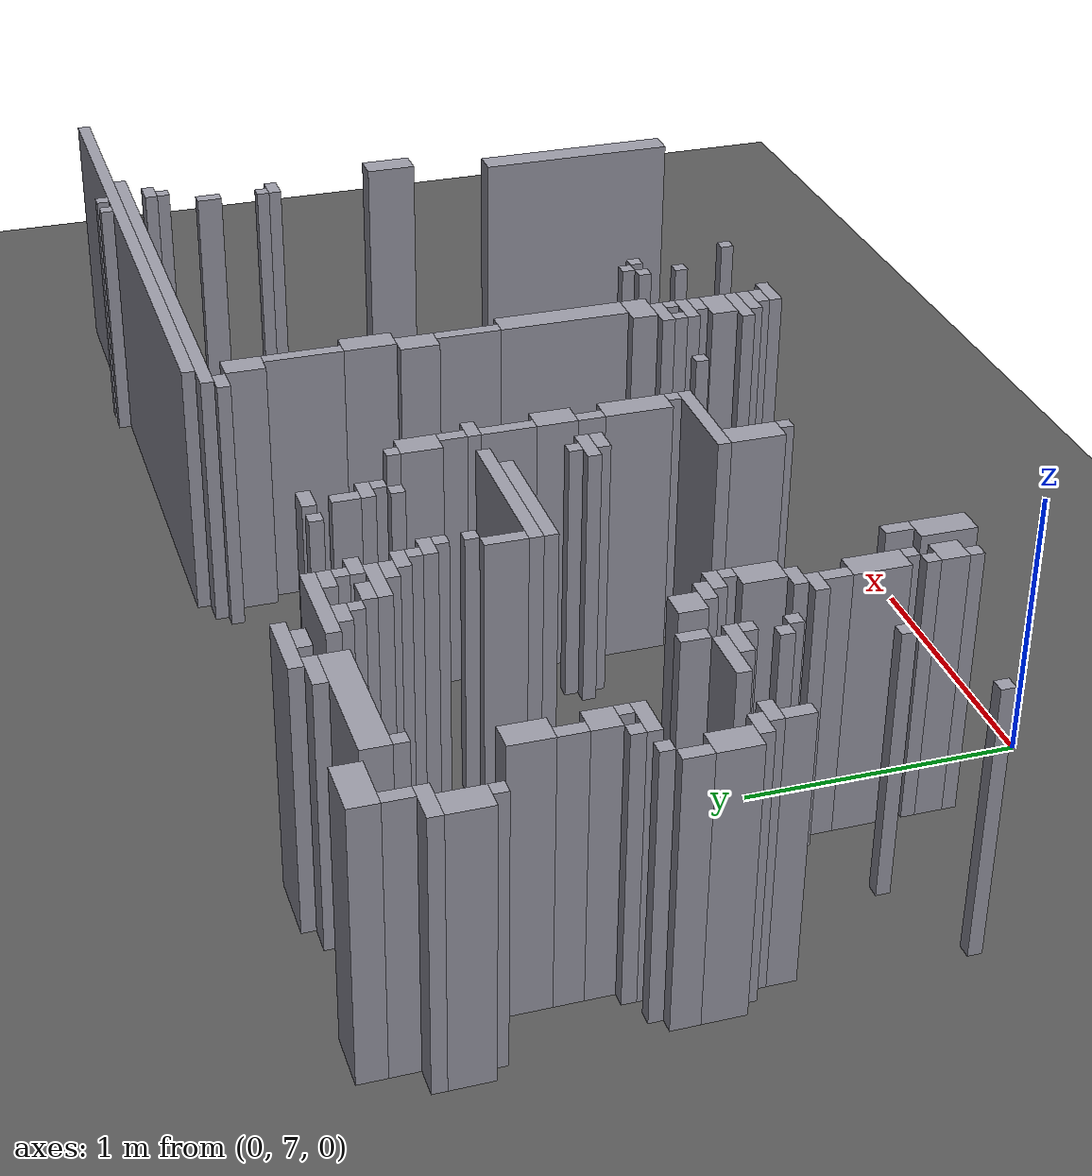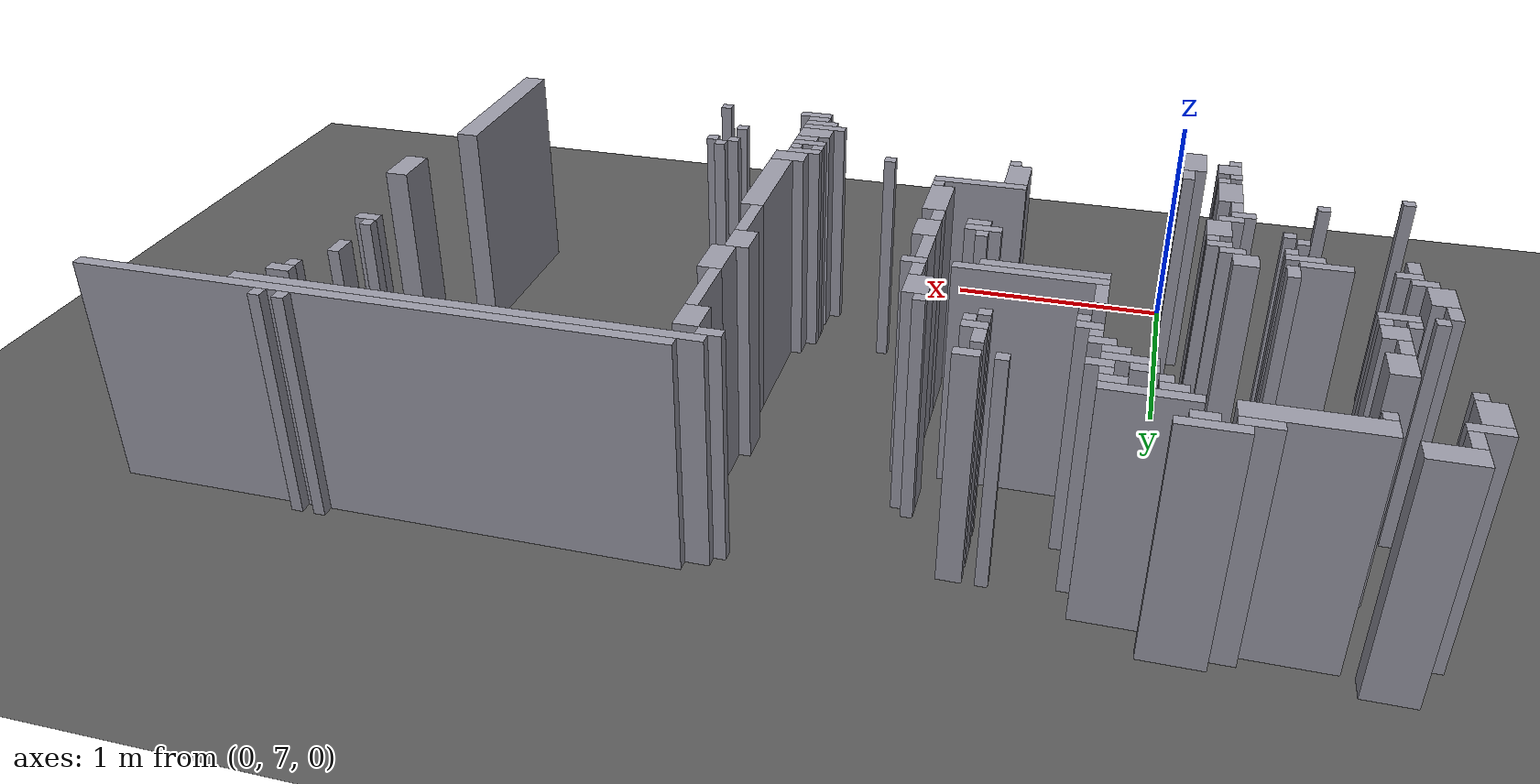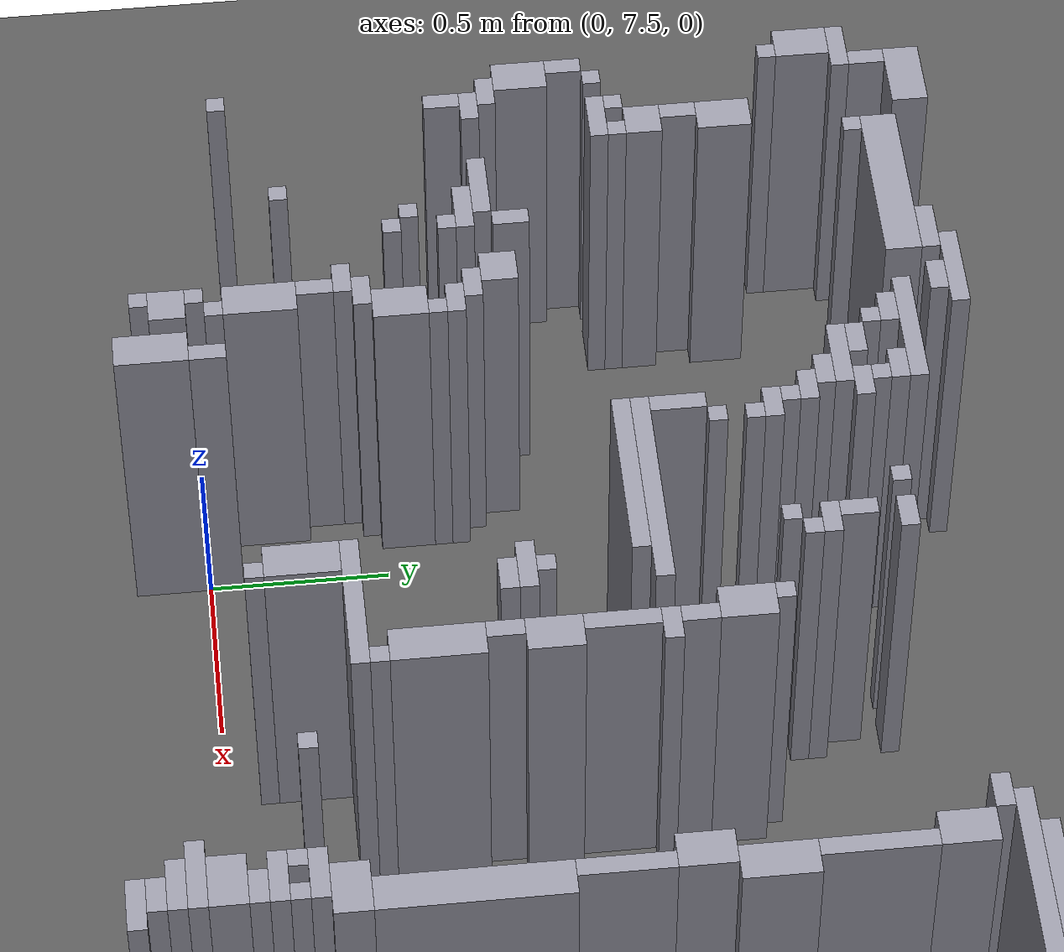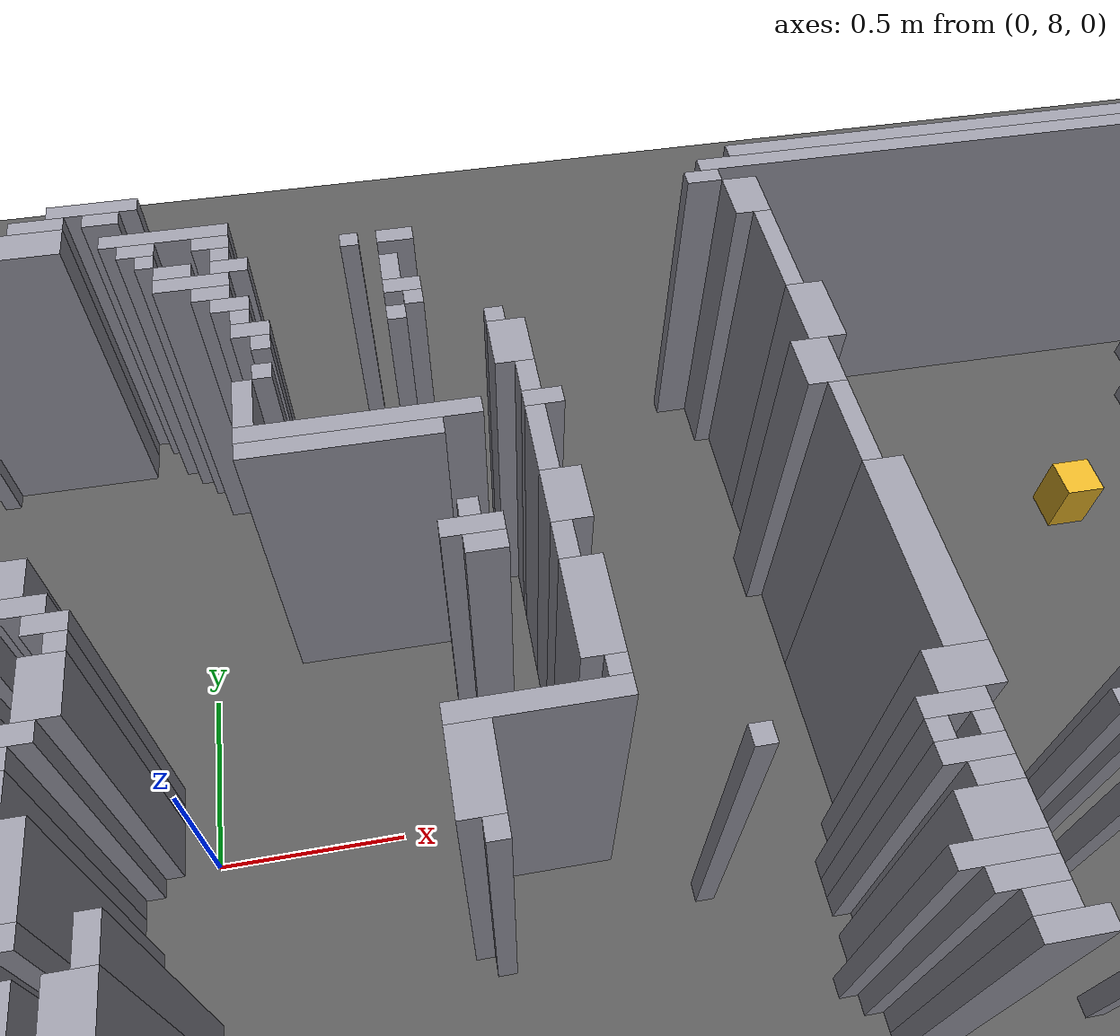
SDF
<sdf version="1.8">
 <world name="dimi">
  <model name="ground">
   <static>true</static>
   <link name="ground_link">
    <collision name="c"><geometry><plane><normal>0 0 1</normal><size>60 60</size></plane></geometry></collision>
    <visual name="v">
     <geometry><plane><normal>0 0 1</normal><size>60 60</size></plane></geometry>
     <material><ambient>0.3 0.3 0.3 1</ambient><diffuse>0.35 0.35 0.35 1</diffuse></material>
    </visual>
   </link>
  </model>
  <model name="walls">
   <static>true</static>
   <link name="wall_0">
    <pose>-0.8470 9.5420 0.5000 0 0 0</pose>
    <collision name="c"><geometry><box><size>0.2000 0.1000 1.0000</size></box></geometry></collision>
    <visual name="v">
     <geometry><box><size>0.2000 0.1000 1.0000</size></box></geometry>
     <material><ambient>0.5 0.5 0.55 1</ambient><diffuse>0.6 0.6 0.65 1</diffuse></material>
    </visual>
   </link>
   <link name="wall_1">
    <pose>-0.1220 9.5670 0.5000 0 0 0</pose>
    <collision name="c"><geometry><box><size>0.2500 0.0500 1.0000</size></box></geometry></collision>
    <visual name="v">
     <geometry><box><size>0.2500 0.0500 1.0000</size></box></geometry>
     <material><ambient>0.5 0.5 0.55 1</ambient><diffuse>0.6 0.6 0.65 1</diffuse></material>
    </visual>
   </link>
   <link name="wall_2">
    <pose>3.2280 9.5670 0.5000 0 0 0</pose>
    <collision name="c"><geometry><box><size>0.0500 0.0500 1.0000</size></box></geometry></collision>
    <visual name="v">
     <geometry><box><size>0.0500 0.0500 1.0000</size></box></geometry>
     <material><ambient>0.5 0.5 0.55 1</ambient><diffuse>0.6 0.6 0.65 1</diffuse></material>
    </visual>
   </link>
   <link name="wall_3">
    <pose>3.3280 9.5670 0.5000 0 0 0</pose>
    <collision name="c"><geometry><box><size>0.0500 0.0500 1.0000</size></box></geometry></collision>
    <visual name="v">
     <geometry><box><size>0.0500 0.0500 1.0000</size></box></geometry>
     <material><ambient>0.5 0.5 0.55 1</ambient><diffuse>0.6 0.6 0.65 1</diffuse></material>
    </visual>
   </link>
   <link name="wall_8">
    <pose>-0.2720 9.5170 0.5000 0 0 0</pose>
    <collision name="c"><geometry><box><size>0.1500 0.0500 1.0000</size></box></geometry></collision>
    <visual name="v">
     <geometry><box><size>0.1500 0.0500 1.0000</size></box></geometry>
     <material><ambient>0.5 0.5 0.55 1</ambient><diffuse>0.6 0.6 0.65 1</diffuse></material>
    </visual>
   </link>
   <link name="wall_9">
    <pose>-0.0970 9.5170 0.5000 0 0 0</pose>
    <collision name="c"><geometry><box><size>0.1000 0.0500 1.0000</size></box></geometry></collision>
    <visual name="v">
     <geometry><box><size>0.1000 0.0500 1.0000</size></box></geometry>
     <material><ambient>0.5 0.5 0.55 1</ambient><diffuse>0.6 0.6 0.65 1</diffuse></material>
    </visual>
   </link>
   <link name="wall_10">
    <pose>2.9280 9.5170 0.5000 0 0 0</pose>
    <collision name="c"><geometry><box><size>2.4500 0.0500 1.0000</size></box></geometry></collision>
    <visual name="v">
     <geometry><box><size>2.4500 0.0500 1.0000</size></box></geometry>
     <material><ambient>0.5 0.5 0.55 1</ambient><diffuse>0.6 0.6 0.65 1</diffuse></material>
    </visual>
   </link>
   <link name="wall_14">
    <pose>-0.9220 9.4420 0.5000 0 0 0</pose>
    <collision name="c"><geometry><box><size>0.0500 0.1000 1.0000</size></box></geometry></collision>
    <visual name="v">
     <geometry><box><size>0.0500 0.1000 1.0000</size></box></geometry>
     <material><ambient>0.5 0.5 0.55 1</ambient><diffuse>0.6 0.6 0.65 1</diffuse></material>
    </visual>
   </link>
   <link name="wall_15">
    <pose>-0.4470 9.4420 0.5000 0 0 0</pose>
    <collision name="c"><geometry><box><size>0.5000 0.1000 1.0000</size></box></geometry></collision>
    <visual name="v">
     <geometry><box><size>0.5000 0.1000 1.0000</size></box></geometry>
     <material><ambient>0.5 0.5 0.55 1</ambient><diffuse>0.6 0.6 0.65 1</diffuse></material>
    </visual>
   </link>
   <link name="wall_16">
    <pose>2.5530 9.4670 0.5000 0 0 0</pose>
    <collision name="c"><geometry><box><size>1.9000 0.0500 1.0000</size></box></geometry></collision>
    <visual name="v">
     <geometry><box><size>1.9000 0.0500 1.0000</size></box></geometry>
     <material><ambient>0.5 0.5 0.55 1</ambient><diffuse>0.6 0.6 0.65 1</diffuse></material>
    </visual>
   </link>
   <link name="wall_22">
    <pose>0.0780 9.4170 0.5000 0 0 0</pose>
    <collision name="c"><geometry><box><size>0.3500 0.0500 1.0000</size></box></geometry></collision>
    <visual name="v">
     <geometry><box><size>0.3500 0.0500 1.0000</size></box></geometry>
     <material><ambient>0.5 0.5 0.55 1</ambient><diffuse>0.6 0.6 0.65 1</diffuse></material>
    </visual>
   </link>
   <link name="wall_23">
    <pose>1.6030 9.4170 0.5000 0 0 0</pose>
    <collision name="c"><geometry><box><size>0.1000 0.0500 1.0000</size></box></geometry></collision>
    <visual name="v">
     <geometry><box><size>0.1000 0.0500 1.0000</size></box></geometry>
     <material><ambient>0.5 0.5 0.55 1</ambient><diffuse>0.6 0.6 0.65 1</diffuse></material>
    </visual>
   </link>
   <link name="wall_28">
    <pose>-0.9720 9.3670 0.5000 0 0 0</pose>
    <collision name="c"><geometry><box><size>0.1500 0.0500 1.0000</size></box></geometry></collision>
    <visual name="v">
     <geometry><box><size>0.1500 0.0500 1.0000</size></box></geometry>
     <material><ambient>0.5 0.5 0.55 1</ambient><diffuse>0.6 0.6 0.65 1</diffuse></material>
    </visual>
   </link>
   <link name="wall_29">
    <pose>-0.6720 9.3670 0.5000 0 0 0</pose>
    <collision name="c"><geometry><box><size>0.0500 0.0500 1.0000</size></box></geometry></collision>
    <visual name="v">
     <geometry><box><size>0.0500 0.0500 1.0000</size></box></geometry>
     <material><ambient>0.5 0.5 0.55 1</ambient><diffuse>0.6 0.6 0.65 1</diffuse></material>
    </visual>
   </link>
   <link name="wall_30">
    <pose>0.0030 9.3670 0.5000 0 0 0</pose>
    <collision name="c"><geometry><box><size>0.1000 0.0500 1.0000</size></box></geometry></collision>
    <visual name="v">
     <geometry><box><size>0.1000 0.0500 1.0000</size></box></geometry>
     <material><ambient>0.5 0.5 0.55 1</ambient><diffuse>0.6 0.6 0.65 1</diffuse></material>
    </visual>
   </link>
   <link name="wall_31">
    <pose>0.2030 9.3670 0.5000 0 0 0</pose>
    <collision name="c"><geometry><box><size>0.1000 0.0500 1.0000</size></box></geometry></collision>
    <visual name="v">
     <geometry><box><size>0.1000 0.0500 1.0000</size></box></geometry>
     <material><ambient>0.5 0.5 0.55 1</ambient><diffuse>0.6 0.6 0.65 1</diffuse></material>
    </visual>
   </link>
   <link name="wall_32">
    <pose>1.7030 9.3170 0.5000 0 0 0</pose>
    <collision name="c"><geometry><box><size>0.1000 0.1500 1.0000</size></box></geometry></collision>
    <visual name="v">
     <geometry><box><size>0.1000 0.1500 1.0000</size></box></geometry>
     <material><ambient>0.5 0.5 0.55 1</ambient><diffuse>0.6 0.6 0.65 1</diffuse></material>
    </visual>
   </link>
   <link name="wall_33">
    <pose>3.3530 9.3670 0.5000 0 0 0</pose>
    <collision name="c"><geometry><box><size>0.1000 0.0500 1.0000</size></box></geometry></collision>
    <visual name="v">
     <geometry><box><size>0.1000 0.0500 1.0000</size></box></geometry>
     <material><ambient>0.5 0.5 0.55 1</ambient><diffuse>0.6 0.6 0.65 1</diffuse></material>
    </visual>
   </link>
   <link name="wall_39">
    <pose>-0.9970 9.2670 0.5000 0 0 0</pose>
    <collision name="c"><geometry><box><size>0.1000 0.1500 1.0000</size></box></geometry></collision>
    <visual name="v">
     <geometry><box><size>0.1000 0.1500 1.0000</size></box></geometry>
     <material><ambient>0.5 0.5 0.55 1</ambient><diffuse>0.6 0.6 0.65 1</diffuse></material>
    </visual>
   </link>
   <link name="wall_40">
    <pose>0.0280 9.3170 0.5000 0 0 0</pose>
    <collision name="c"><geometry><box><size>0.0500 0.0500 1.0000</size></box></geometry></collision>
    <visual name="v">
     <geometry><box><size>0.0500 0.0500 1.0000</size></box></geometry>
     <material><ambient>0.5 0.5 0.55 1</ambient><diffuse>0.6 0.6 0.65 1</diffuse></material>
    </visual>
   </link>
   <link name="wall_41">
    <pose>0.2280 9.3170 0.5000 0 0 0</pose>
    <collision name="c"><geometry><box><size>0.0500 0.0500 1.0000</size></box></geometry></collision>
    <visual name="v">
     <geometry><box><size>0.0500 0.0500 1.0000</size></box></geometry>
     <material><ambient>0.5 0.5 0.55 1</ambient><diffuse>0.6 0.6 0.65 1</diffuse></material>
    </visual>
   </link>
   <link name="wall_42">
    <pose>0.5780 9.3170 0.5000 0 0 0</pose>
    <collision name="c"><geometry><box><size>0.0500 0.0500 1.0000</size></box></geometry></collision>
    <visual name="v">
     <geometry><box><size>0.0500 0.0500 1.0000</size></box></geometry>
     <material><ambient>0.5 0.5 0.55 1</ambient><diffuse>0.6 0.6 0.65 1</diffuse></material>
    </visual>
   </link>
   <link name="wall_43">
    <pose>0.7030 9.3170 0.5000 0 0 0</pose>
    <collision name="c"><geometry><box><size>0.1000 0.0500 1.0000</size></box></geometry></collision>
    <visual name="v">
     <geometry><box><size>0.1000 0.0500 1.0000</size></box></geometry>
     <material><ambient>0.5 0.5 0.55 1</ambient><diffuse>0.6 0.6 0.65 1</diffuse></material>
    </visual>
   </link>
   <link name="wall_44">
    <pose>3.3280 9.3170 0.5000 0 0 0</pose>
    <collision name="c"><geometry><box><size>0.0500 0.0500 1.0000</size></box></geometry></collision>
    <visual name="v">
     <geometry><box><size>0.0500 0.0500 1.0000</size></box></geometry>
     <material><ambient>0.5 0.5 0.55 1</ambient><diffuse>0.6 0.6 0.65 1</diffuse></material>
    </visual>
   </link>
   <link name="wall_48">
    <pose>0.1030 9.2670 0.5000 0 0 0</pose>
    <collision name="c"><geometry><box><size>0.1000 0.0500 1.0000</size></box></geometry></collision>
    <visual name="v">
     <geometry><box><size>0.1000 0.0500 1.0000</size></box></geometry>
     <material><ambient>0.5 0.5 0.55 1</ambient><diffuse>0.6 0.6 0.65 1</diffuse></material>
    </visual>
   </link>
   <link name="wall_49">
    <pose>0.2530 9.2670 0.5000 0 0 0</pose>
    <collision name="c"><geometry><box><size>0.1000 0.0500 1.0000</size></box></geometry></collision>
    <visual name="v">
     <geometry><box><size>0.1000 0.0500 1.0000</size></box></geometry>
     <material><ambient>0.5 0.5 0.55 1</ambient><diffuse>0.6 0.6 0.65 1</diffuse></material>
    </visual>
   </link>
   <link name="wall_51">
    <pose>0.1530 9.2170 0.5000 0 0 0</pose>
    <collision name="c"><geometry><box><size>0.2000 0.0500 1.0000</size></box></geometry></collision>
    <visual name="v">
     <geometry><box><size>0.2000 0.0500 1.0000</size></box></geometry>
     <material><ambient>0.5 0.5 0.55 1</ambient><diffuse>0.6 0.6 0.65 1</diffuse></material>
    </visual>
   </link>
   <link name="wall_52">
    <pose>0.6780 9.1920 0.5000 0 0 0</pose>
    <collision name="c"><geometry><box><size>0.0500 0.1000 1.0000</size></box></geometry></collision>
    <visual name="v">
     <geometry><box><size>0.0500 0.1000 1.0000</size></box></geometry>
     <material><ambient>0.5 0.5 0.55 1</ambient><diffuse>0.6 0.6 0.65 1</diffuse></material>
    </visual>
   </link>
   <link name="wall_53">
    <pose>1.7280 9.0920 0.5000 0 0 0</pose>
    <collision name="c"><geometry><box><size>0.0500 0.3000 1.0000</size></box></geometry></collision>
    <visual name="v">
     <geometry><box><size>0.0500 0.3000 1.0000</size></box></geometry>
     <material><ambient>0.5 0.5 0.55 1</ambient><diffuse>0.6 0.6 0.65 1</diffuse></material>
    </visual>
   </link>
   <link name="wall_54">
    <pose>-0.9720 9.1670 0.5000 0 0 0</pose>
    <collision name="c"><geometry><box><size>0.0500 0.0500 1.0000</size></box></geometry></collision>
    <visual name="v">
     <geometry><box><size>0.0500 0.0500 1.0000</size></box></geometry>
     <material><ambient>0.5 0.5 0.55 1</ambient><diffuse>0.6 0.6 0.65 1</diffuse></material>
    </visual>
   </link>
   <link name="wall_55">
    <pose>0.2030 9.1670 0.5000 0 0 0</pose>
    <collision name="c"><geometry><box><size>0.1000 0.0500 1.0000</size></box></geometry></collision>
    <visual name="v">
     <geometry><box><size>0.1000 0.0500 1.0000</size></box></geometry>
     <material><ambient>0.5 0.5 0.55 1</ambient><diffuse>0.6 0.6 0.65 1</diffuse></material>
    </visual>
   </link>
   <link name="wall_56">
    <pose>3.2280 9.1420 0.5000 0 0 0</pose>
    <collision name="c"><geometry><box><size>0.0500 0.1000 1.0000</size></box></geometry></collision>
    <visual name="v">
     <geometry><box><size>0.0500 0.1000 1.0000</size></box></geometry>
     <material><ambient>0.5 0.5 0.55 1</ambient><diffuse>0.6 0.6 0.65 1</diffuse></material>
    </visual>
   </link>
   <link name="wall_61">
    <pose>0.2530 9.1170 0.5000 0 0 0</pose>
    <collision name="c"><geometry><box><size>0.1000 0.0500 1.0000</size></box></geometry></collision>
    <visual name="v">
     <geometry><box><size>0.1000 0.0500 1.0000</size></box></geometry>
     <material><ambient>0.5 0.5 0.55 1</ambient><diffuse>0.6 0.6 0.65 1</diffuse></material>
    </visual>
   </link>
   <link name="wall_62">
    <pose>0.7030 9.1170 0.5000 0 0 0</pose>
    <collision name="c"><geometry><box><size>0.1000 0.0500 1.0000</size></box></geometry></collision>
    <visual name="v">
     <geometry><box><size>0.1000 0.0500 1.0000</size></box></geometry>
     <material><ambient>0.5 0.5 0.55 1</ambient><diffuse>0.6 0.6 0.65 1</diffuse></material>
    </visual>
   </link>
   <link name="wall_65">
    <pose>-0.7470 9.0170 0.5000 0 0 0</pose>
    <collision name="c"><geometry><box><size>0.1000 0.1500 1.0000</size></box></geometry></collision>
    <visual name="v">
     <geometry><box><size>0.1000 0.1500 1.0000</size></box></geometry>
     <material><ambient>0.5 0.5 0.55 1</ambient><diffuse>0.6 0.6 0.65 1</diffuse></material>
    </visual>
   </link>
   <link name="wall_66">
    <pose>0.2780 9.0670 0.5000 0 0 0</pose>
    <collision name="c"><geometry><box><size>0.0500 0.0500 1.0000</size></box></geometry></collision>
    <visual name="v">
     <geometry><box><size>0.0500 0.0500 1.0000</size></box></geometry>
     <material><ambient>0.5 0.5 0.55 1</ambient><diffuse>0.6 0.6 0.65 1</diffuse></material>
    </visual>
   </link>
   <link name="wall_67">
    <pose>0.7280 9.0670 0.5000 0 0 0</pose>
    <collision name="c"><geometry><box><size>0.0500 0.0500 1.0000</size></box></geometry></collision>
    <visual name="v">
     <geometry><box><size>0.0500 0.0500 1.0000</size></box></geometry>
     <material><ambient>0.5 0.5 0.55 1</ambient><diffuse>0.6 0.6 0.65 1</diffuse></material>
    </visual>
   </link>
   <link name="wall_72">
    <pose>0.3030 9.0170 0.5000 0 0 0</pose>
    <collision name="c"><geometry><box><size>0.1000 0.0500 1.0000</size></box></geometry></collision>
    <visual name="v">
     <geometry><box><size>0.1000 0.0500 1.0000</size></box></geometry>
     <material><ambient>0.5 0.5 0.55 1</ambient><diffuse>0.6 0.6 0.65 1</diffuse></material>
    </visual>
   </link>
   <link name="wall_73">
    <pose>0.6780 9.0170 0.5000 0 0 0</pose>
    <collision name="c"><geometry><box><size>0.0500 0.0500 1.0000</size></box></geometry></collision>
    <visual name="v">
     <geometry><box><size>0.0500 0.0500 1.0000</size></box></geometry>
     <material><ambient>0.5 0.5 0.55 1</ambient><diffuse>0.6 0.6 0.65 1</diffuse></material>
    </visual>
   </link>
   <link name="wall_76">
    <pose>0.3280 8.9670 0.5000 0 0 0</pose>
    <collision name="c"><geometry><box><size>0.0500 0.0500 1.0000</size></box></geometry></collision>
    <visual name="v">
     <geometry><box><size>0.0500 0.0500 1.0000</size></box></geometry>
     <material><ambient>0.5 0.5 0.55 1</ambient><diffuse>0.6 0.6 0.65 1</diffuse></material>
    </visual>
   </link>
   <link name="wall_77">
    <pose>0.9280 8.9670 0.5000 0 0 0</pose>
    <collision name="c"><geometry><box><size>0.0500 0.0500 1.0000</size></box></geometry></collision>
    <visual name="v">
     <geometry><box><size>0.0500 0.0500 1.0000</size></box></geometry>
     <material><ambient>0.5 0.5 0.55 1</ambient><diffuse>0.6 0.6 0.65 1</diffuse></material>
    </visual>
   </link>
   <link name="wall_80">
    <pose>-0.7720 8.8920 0.5000 0 0 0</pose>
    <collision name="c"><geometry><box><size>0.0500 0.1000 1.0000</size></box></geometry></collision>
    <visual name="v">
     <geometry><box><size>0.0500 0.1000 1.0000</size></box></geometry>
     <material><ambient>0.5 0.5 0.55 1</ambient><diffuse>0.6 0.6 0.65 1</diffuse></material>
    </visual>
   </link>
   <link name="wall_81">
    <pose>0.9530 8.8670 0.5000 0 0 0</pose>
    <collision name="c"><geometry><box><size>0.1000 0.1500 1.0000</size></box></geometry></collision>
    <visual name="v">
     <geometry><box><size>0.1000 0.1500 1.0000</size></box></geometry>
     <material><ambient>0.5 0.5 0.55 1</ambient><diffuse>0.6 0.6 0.65 1</diffuse></material>
    </visual>
   </link>
   <link name="wall_82">
    <pose>1.7530 8.8420 0.5000 0 0 0</pose>
    <collision name="c"><geometry><box><size>0.1000 0.2000 1.0000</size></box></geometry></collision>
    <visual name="v">
     <geometry><box><size>0.1000 0.2000 1.0000</size></box></geometry>
     <material><ambient>0.5 0.5 0.55 1</ambient><diffuse>0.6 0.6 0.65 1</diffuse></material>
    </visual>
   </link>
   <link name="wall_83">
    <pose>3.2280 8.9170 0.5000 0 0 0</pose>
    <collision name="c"><geometry><box><size>0.0500 0.0500 1.0000</size></box></geometry></collision>
    <visual name="v">
     <geometry><box><size>0.0500 0.0500 1.0000</size></box></geometry>
     <material><ambient>0.5 0.5 0.55 1</ambient><diffuse>0.6 0.6 0.65 1</diffuse></material>
    </visual>
   </link>
   <link name="wall_85">
    <pose>0.3280 8.8670 0.5000 0 0 0</pose>
    <collision name="c"><geometry><box><size>0.0500 0.0500 1.0000</size></box></geometry></collision>
    <visual name="v">
     <geometry><box><size>0.0500 0.0500 1.0000</size></box></geometry>
     <material><ambient>0.5 0.5 0.55 1</ambient><diffuse>0.6 0.6 0.65 1</diffuse></material>
    </visual>
   </link>
   <link name="wall_86">
    <pose>3.2530 8.8670 0.5000 0 0 0</pose>
    <collision name="c"><geometry><box><size>0.1000 0.0500 1.0000</size></box></geometry></collision>
    <visual name="v">
     <geometry><box><size>0.1000 0.0500 1.0000</size></box></geometry>
     <material><ambient>0.5 0.5 0.55 1</ambient><diffuse>0.6 0.6 0.65 1</diffuse></material>
    </visual>
   </link>
   <link name="wall_89">
    <pose>-0.7470 8.7920 0.5000 0 0 0</pose>
    <collision name="c"><geometry><box><size>0.1000 0.1000 1.0000</size></box></geometry></collision>
    <visual name="v">
     <geometry><box><size>0.1000 0.1000 1.0000</size></box></geometry>
     <material><ambient>0.5 0.5 0.55 1</ambient><diffuse>0.6 0.6 0.65 1</diffuse></material>
    </visual>
   </link>
   <link name="wall_90">
    <pose>0.2780 8.7670 0.5000 0 0 0</pose>
    <collision name="c"><geometry><box><size>0.0500 0.1500 1.0000</size></box></geometry></collision>
    <visual name="v">
     <geometry><box><size>0.0500 0.1500 1.0000</size></box></geometry>
     <material><ambient>0.5 0.5 0.55 1</ambient><diffuse>0.6 0.6 0.65 1</diffuse></material>
    </visual>
   </link>
   <link name="wall_94">
    <pose>0.9780 8.7420 0.5000 0 0 0</pose>
    <collision name="c"><geometry><box><size>0.0500 0.1000 1.0000</size></box></geometry></collision>
    <visual name="v">
     <geometry><box><size>0.0500 0.1000 1.0000</size></box></geometry>
     <material><ambient>0.5 0.5 0.55 1</ambient><diffuse>0.6 0.6 0.65 1</diffuse></material>
    </visual>
   </link>
   <link name="wall_97">
    <pose>-0.8220 8.7170 0.5000 0 0 0</pose>
    <collision name="c"><geometry><box><size>0.0500 0.0500 1.0000</size></box></geometry></collision>
    <visual name="v">
     <geometry><box><size>0.0500 0.0500 1.0000</size></box></geometry>
     <material><ambient>0.5 0.5 0.55 1</ambient><diffuse>0.6 0.6 0.65 1</diffuse></material>
    </visual>
   </link>
   <link name="wall_98">
    <pose>-0.7220 8.7170 0.5000 0 0 0</pose>
    <collision name="c"><geometry><box><size>0.0500 0.0500 1.0000</size></box></geometry></collision>
    <visual name="v">
     <geometry><box><size>0.0500 0.0500 1.0000</size></box></geometry>
     <material><ambient>0.5 0.5 0.55 1</ambient><diffuse>0.6 0.6 0.65 1</diffuse></material>
    </visual>
   </link>
   <link name="wall_99">
    <pose>1.7030 8.6670 0.5000 0 0 0</pose>
    <collision name="c"><geometry><box><size>0.1000 0.1500 1.0000</size></box></geometry></collision>
    <visual name="v">
     <geometry><box><size>0.1000 0.1500 1.0000</size></box></geometry>
     <material><ambient>0.5 0.5 0.55 1</ambient><diffuse>0.6 0.6 0.65 1</diffuse></material>
    </visual>
   </link>
   <link name="wall_101">
    <pose>-0.9220 8.6670 0.5000 0 0 0</pose>
    <collision name="c"><geometry><box><size>0.0500 0.0500 1.0000</size></box></geometry></collision>
    <visual name="v">
     <geometry><box><size>0.0500 0.0500 1.0000</size></box></geometry>
     <material><ambient>0.5 0.5 0.55 1</ambient><diffuse>0.6 0.6 0.65 1</diffuse></material>
    </visual>
   </link>
   <link name="wall_102">
    <pose>-0.7720 8.6670 0.5000 0 0 0</pose>
    <collision name="c"><geometry><box><size>0.1500 0.0500 1.0000</size></box></geometry></collision>
    <visual name="v">
     <geometry><box><size>0.1500 0.0500 1.0000</size></box></geometry>
     <material><ambient>0.5 0.5 0.55 1</ambient><diffuse>0.6 0.6 0.65 1</diffuse></material>
    </visual>
   </link>
   <link name="wall_103">
    <pose>0.5530 8.6670 0.5000 0 0 0</pose>
    <collision name="c"><geometry><box><size>0.6000 0.0500 1.0000</size></box></geometry></collision>
    <visual name="v">
     <geometry><box><size>0.6000 0.0500 1.0000</size></box></geometry>
     <material><ambient>0.5 0.5 0.55 1</ambient><diffuse>0.6 0.6 0.65 1</diffuse></material>
    </visual>
   </link>
   <link name="wall_104">
    <pose>1.0030 8.6670 0.5000 0 0 0</pose>
    <collision name="c"><geometry><box><size>0.1000 0.0500 1.0000</size></box></geometry></collision>
    <visual name="v">
     <geometry><box><size>0.1000 0.0500 1.0000</size></box></geometry>
     <material><ambient>0.5 0.5 0.55 1</ambient><diffuse>0.6 0.6 0.65 1</diffuse></material>
    </visual>
   </link>
   <link name="wall_105">
    <pose>-0.9720 8.5920 0.5000 0 0 0</pose>
    <collision name="c"><geometry><box><size>0.0500 0.1000 1.0000</size></box></geometry></collision>
    <visual name="v">
     <geometry><box><size>0.0500 0.1000 1.0000</size></box></geometry>
     <material><ambient>0.5 0.5 0.55 1</ambient><diffuse>0.6 0.6 0.65 1</diffuse></material>
    </visual>
   </link>
   <link name="wall_106">
    <pose>0.5030 8.6170 0.5000 0 0 0</pose>
    <collision name="c"><geometry><box><size>0.5000 0.0500 1.0000</size></box></geometry></collision>
    <visual name="v">
     <geometry><box><size>0.5000 0.0500 1.0000</size></box></geometry>
     <material><ambient>0.5 0.5 0.55 1</ambient><diffuse>0.6 0.6 0.65 1</diffuse></material>
    </visual>
   </link>
   <link name="wall_107">
    <pose>0.9780 8.5420 0.5000 0 0 0</pose>
    <collision name="c"><geometry><box><size>0.0500 0.2000 1.0000</size></box></geometry></collision>
    <visual name="v">
     <geometry><box><size>0.0500 0.2000 1.0000</size></box></geometry>
     <material><ambient>0.5 0.5 0.55 1</ambient><diffuse>0.6 0.6 0.65 1</diffuse></material>
    </visual>
   </link>
   <link name="wall_109">
    <pose>1.7280 8.4670 0.5000 0 0 0</pose>
    <collision name="c"><geometry><box><size>0.0500 0.2500 1.0000</size></box></geometry></collision>
    <visual name="v">
     <geometry><box><size>0.0500 0.2500 1.0000</size></box></geometry>
     <material><ambient>0.5 0.5 0.55 1</ambient><diffuse>0.6 0.6 0.65 1</diffuse></material>
    </visual>
   </link>
   <link name="wall_112">
    <pose>-0.9470 8.4670 0.5000 0 0 0</pose>
    <collision name="c"><geometry><box><size>0.1000 0.1500 1.0000</size></box></geometry></collision>
    <visual name="v">
     <geometry><box><size>0.1000 0.1500 1.0000</size></box></geometry>
     <material><ambient>0.5 0.5 0.55 1</ambient><diffuse>0.6 0.6 0.65 1</diffuse></material>
    </visual>
   </link>
   <link name="wall_120">
    <pose>-0.4220 8.3920 0.5000 0 0 0</pose>
    <collision name="c"><geometry><box><size>0.0500 0.1000 1.0000</size></box></geometry></collision>
    <visual name="v">
     <geometry><box><size>0.0500 0.1000 1.0000</size></box></geometry>
     <material><ambient>0.5 0.5 0.55 1</ambient><diffuse>0.6 0.6 0.65 1</diffuse></material>
    </visual>
   </link>
   <link name="wall_121">
    <pose>1.0030 8.3670 0.5000 0 0 0</pose>
    <collision name="c"><geometry><box><size>0.1000 0.1500 1.0000</size></box></geometry></collision>
    <visual name="v">
     <geometry><box><size>0.1000 0.1500 1.0000</size></box></geometry>
     <material><ambient>0.5 0.5 0.55 1</ambient><diffuse>0.6 0.6 0.65 1</diffuse></material>
    </visual>
   </link>
   <link name="wall_122">
    <pose>3.3530 8.3420 0.5000 0 0 0</pose>
    <collision name="c"><geometry><box><size>0.1000 0.2000 1.0000</size></box></geometry></collision>
    <visual name="v">
     <geometry><box><size>0.1000 0.2000 1.0000</size></box></geometry>
     <material><ambient>0.5 0.5 0.55 1</ambient><diffuse>0.6 0.6 0.65 1</diffuse></material>
    </visual>
   </link>
   <link name="wall_126">
    <pose>-0.8970 8.3670 0.5000 0 0 0</pose>
    <collision name="c"><geometry><box><size>0.1000 0.0500 1.0000</size></box></geometry></collision>
    <visual name="v">
     <geometry><box><size>0.1000 0.0500 1.0000</size></box></geometry>
     <material><ambient>0.5 0.5 0.55 1</ambient><diffuse>0.6 0.6 0.65 1</diffuse></material>
    </visual>
   </link>
   <link name="wall_127">
    <pose>-0.2470 8.3420 0.5000 0 0 0</pose>
    <collision name="c"><geometry><box><size>0.1000 0.1000 1.0000</size></box></geometry></collision>
    <visual name="v">
     <geometry><box><size>0.1000 0.1000 1.0000</size></box></geometry>
     <material><ambient>0.5 0.5 0.55 1</ambient><diffuse>0.6 0.6 0.65 1</diffuse></material>
    </visual>
   </link>
   <link name="wall_128">
    <pose>0.7780 8.3670 0.5000 0 0 0</pose>
    <collision name="c"><geometry><box><size>0.0500 0.0500 1.0000</size></box></geometry></collision>
    <visual name="v">
     <geometry><box><size>0.0500 0.0500 1.0000</size></box></geometry>
     <material><ambient>0.5 0.5 0.55 1</ambient><diffuse>0.6 0.6 0.65 1</diffuse></material>
    </visual>
   </link>
   <link name="wall_132">
    <pose>-0.8470 8.3170 0.5000 0 0 0</pose>
    <collision name="c"><geometry><box><size>0.1000 0.0500 1.0000</size></box></geometry></collision>
    <visual name="v">
     <geometry><box><size>0.1000 0.0500 1.0000</size></box></geometry>
     <material><ambient>0.5 0.5 0.55 1</ambient><diffuse>0.6 0.6 0.65 1</diffuse></material>
    </visual>
   </link>
   <link name="wall_133">
    <pose>-0.5470 8.3170 0.5000 0 0 0</pose>
    <collision name="c"><geometry><box><size>0.2000 0.0500 1.0000</size></box></geometry></collision>
    <visual name="v">
     <geometry><box><size>0.2000 0.0500 1.0000</size></box></geometry>
     <material><ambient>0.5 0.5 0.55 1</ambient><diffuse>0.6 0.6 0.65 1</diffuse></material>
    </visual>
   </link>
   <link name="wall_134">
    <pose>0.7780 8.3170 0.5000 0 0 0</pose>
    <collision name="c"><geometry><box><size>0.1500 0.0500 1.0000</size></box></geometry></collision>
    <visual name="v">
     <geometry><box><size>0.1500 0.0500 1.0000</size></box></geometry>
     <material><ambient>0.5 0.5 0.55 1</ambient><diffuse>0.6 0.6 0.65 1</diffuse></material>
    </visual>
   </link>
   <link name="wall_135">
    <pose>1.7530 8.0920 0.5000 0 0 0</pose>
    <collision name="c"><geometry><box><size>0.1000 0.5000 1.0000</size></box></geometry></collision>
    <visual name="v">
     <geometry><box><size>0.1000 0.5000 1.0000</size></box></geometry>
     <material><ambient>0.5 0.5 0.55 1</ambient><diffuse>0.6 0.6 0.65 1</diffuse></material>
    </visual>
   </link>
   <link name="wall_136">
    <pose>-0.8720 8.2420 0.5000 0 0 0</pose>
    <collision name="c"><geometry><box><size>0.0500 0.1000 1.0000</size></box></geometry></collision>
    <visual name="v">
     <geometry><box><size>0.0500 0.1000 1.0000</size></box></geometry>
     <material><ambient>0.5 0.5 0.55 1</ambient><diffuse>0.6 0.6 0.65 1</diffuse></material>
    </visual>
   </link>
   <link name="wall_137">
    <pose>-0.4720 8.2670 0.5000 0 0 0</pose>
    <collision name="c"><geometry><box><size>0.1500 0.0500 1.0000</size></box></geometry></collision>
    <visual name="v">
     <geometry><box><size>0.1500 0.0500 1.0000</size></box></geometry>
     <material><ambient>0.5 0.5 0.55 1</ambient><diffuse>0.6 0.6 0.65 1</diffuse></material>
    </visual>
   </link>
   <link name="wall_138">
    <pose>-0.1970 8.2670 0.5000 0 0 0</pose>
    <collision name="c"><geometry><box><size>0.1000 0.0500 1.0000</size></box></geometry></collision>
    <visual name="v">
     <geometry><box><size>0.1000 0.0500 1.0000</size></box></geometry>
     <material><ambient>0.5 0.5 0.55 1</ambient><diffuse>0.6 0.6 0.65 1</diffuse></material>
    </visual>
   </link>
   <link name="wall_139">
    <pose>0.8030 8.2670 0.5000 0 0 0</pose>
    <collision name="c"><geometry><box><size>0.1000 0.0500 1.0000</size></box></geometry></collision>
    <visual name="v">
     <geometry><box><size>0.1000 0.0500 1.0000</size></box></geometry>
     <material><ambient>0.5 0.5 0.55 1</ambient><diffuse>0.6 0.6 0.65 1</diffuse></material>
    </visual>
   </link>
   <link name="wall_140">
    <pose>0.9780 8.2420 0.5000 0 0 0</pose>
    <collision name="c"><geometry><box><size>0.0500 0.1000 1.0000</size></box></geometry></collision>
    <visual name="v">
     <geometry><box><size>0.0500 0.1000 1.0000</size></box></geometry>
     <material><ambient>0.5 0.5 0.55 1</ambient><diffuse>0.6 0.6 0.65 1</diffuse></material>
    </visual>
   </link>
   <link name="wall_141">
    <pose>-0.4220 8.2170 0.5000 0 0 0</pose>
    <collision name="c"><geometry><box><size>0.0500 0.0500 1.0000</size></box></geometry></collision>
    <visual name="v">
     <geometry><box><size>0.0500 0.0500 1.0000</size></box></geometry>
     <material><ambient>0.5 0.5 0.55 1</ambient><diffuse>0.6 0.6 0.65 1</diffuse></material>
    </visual>
   </link>
   <link name="wall_142">
    <pose>-0.1470 8.2170 0.5000 0 0 0</pose>
    <collision name="c"><geometry><box><size>0.1000 0.0500 1.0000</size></box></geometry></collision>
    <visual name="v">
     <geometry><box><size>0.1000 0.0500 1.0000</size></box></geometry>
     <material><ambient>0.5 0.5 0.55 1</ambient><diffuse>0.6 0.6 0.65 1</diffuse></material>
    </visual>
   </link>
   <link name="wall_145">
    <pose>-0.1220 8.1670 0.5000 0 0 0</pose>
    <collision name="c"><geometry><box><size>0.0500 0.0500 1.0000</size></box></geometry></collision>
    <visual name="v">
     <geometry><box><size>0.0500 0.0500 1.0000</size></box></geometry>
     <material><ambient>0.5 0.5 0.55 1</ambient><diffuse>0.6 0.6 0.65 1</diffuse></material>
    </visual>
   </link>
   <link name="wall_146">
    <pose>1.0030 8.0670 0.5000 0 0 0</pose>
    <collision name="c"><geometry><box><size>0.1000 0.2500 1.0000</size></box></geometry></collision>
    <visual name="v">
     <geometry><box><size>0.1000 0.2500 1.0000</size></box></geometry>
     <material><ambient>0.5 0.5 0.55 1</ambient><diffuse>0.6 0.6 0.65 1</diffuse></material>
    </visual>
   </link>
   <link name="wall_151">
    <pose>-0.4720 8.1170 0.5000 0 0 0</pose>
    <collision name="c"><geometry><box><size>0.0500 0.0500 1.0000</size></box></geometry></collision>
    <visual name="v">
     <geometry><box><size>0.0500 0.0500 1.0000</size></box></geometry>
     <material><ambient>0.5 0.5 0.55 1</ambient><diffuse>0.6 0.6 0.65 1</diffuse></material>
    </visual>
   </link>
   <link name="wall_152">
    <pose>-0.1470 8.0670 0.5000 0 0 0</pose>
    <collision name="c"><geometry><box><size>0.1000 0.1500 1.0000</size></box></geometry></collision>
    <visual name="v">
     <geometry><box><size>0.1000 0.1500 1.0000</size></box></geometry>
     <material><ambient>0.5 0.5 0.55 1</ambient><diffuse>0.6 0.6 0.65 1</diffuse></material>
    </visual>
   </link>
   <link name="wall_156">
    <pose>-0.4220 8.0670 0.5000 0 0 0</pose>
    <collision name="c"><geometry><box><size>0.0500 0.0500 1.0000</size></box></geometry></collision>
    <visual name="v">
     <geometry><box><size>0.0500 0.0500 1.0000</size></box></geometry>
     <material><ambient>0.5 0.5 0.55 1</ambient><diffuse>0.6 0.6 0.65 1</diffuse></material>
    </visual>
   </link>
   <link name="wall_163">
    <pose>-0.1970 7.9670 0.5000 0 0 0</pose>
    <collision name="c"><geometry><box><size>0.1000 0.0500 1.0000</size></box></geometry></collision>
    <visual name="v">
     <geometry><box><size>0.1000 0.0500 1.0000</size></box></geometry>
     <material><ambient>0.5 0.5 0.55 1</ambient><diffuse>0.6 0.6 0.65 1</diffuse></material>
    </visual>
   </link>
   <link name="wall_169">
    <pose>-0.2470 7.9170 0.5000 0 0 0</pose>
    <collision name="c"><geometry><box><size>0.1000 0.0500 1.0000</size></box></geometry></collision>
    <visual name="v">
     <geometry><box><size>0.1000 0.0500 1.0000</size></box></geometry>
     <material><ambient>0.5 0.5 0.55 1</ambient><diffuse>0.6 0.6 0.65 1</diffuse></material>
    </visual>
   </link>
   <link name="wall_170">
    <pose>1.0280 7.9170 0.5000 0 0 0</pose>
    <collision name="c"><geometry><box><size>0.0500 0.0500 1.0000</size></box></geometry></collision>
    <visual name="v">
     <geometry><box><size>0.0500 0.0500 1.0000</size></box></geometry>
     <material><ambient>0.5 0.5 0.55 1</ambient><diffuse>0.6 0.6 0.65 1</diffuse></material>
    </visual>
   </link>
   <link name="wall_171">
    <pose>3.2530 7.5420 0.5000 0 0 0</pose>
    <collision name="c"><geometry><box><size>0.1000 0.8000 1.0000</size></box></geometry></collision>
    <visual name="v">
     <geometry><box><size>0.1000 0.8000 1.0000</size></box></geometry>
     <material><ambient>0.5 0.5 0.55 1</ambient><diffuse>0.6 0.6 0.65 1</diffuse></material>
    </visual>
   </link>
   <link name="wall_177">
    <pose>-0.2220 7.8420 0.5000 0 0 0</pose>
    <collision name="c"><geometry><box><size>0.0500 0.1000 1.0000</size></box></geometry></collision>
    <visual name="v">
     <geometry><box><size>0.0500 0.1000 1.0000</size></box></geometry>
     <material><ambient>0.5 0.5 0.55 1</ambient><diffuse>0.6 0.6 0.65 1</diffuse></material>
    </visual>
   </link>
   <link name="wall_178">
    <pose>0.8530 7.8670 0.5000 0 0 0</pose>
    <collision name="c"><geometry><box><size>0.4000 0.0500 1.0000</size></box></geometry></collision>
    <visual name="v">
     <geometry><box><size>0.4000 0.0500 1.0000</size></box></geometry>
     <material><ambient>0.5 0.5 0.55 1</ambient><diffuse>0.6 0.6 0.65 1</diffuse></material>
    </visual>
   </link>
   <link name="wall_181">
    <pose>0.7030 7.7420 0.5000 0 0 0</pose>
    <collision name="c"><geometry><box><size>0.1000 0.2000 1.0000</size></box></geometry></collision>
    <visual name="v">
     <geometry><box><size>0.1000 0.2000 1.0000</size></box></geometry>
     <material><ambient>0.5 0.5 0.55 1</ambient><diffuse>0.6 0.6 0.65 1</diffuse></material>
    </visual>
   </link>
   <link name="wall_182">
    <pose>1.7280 7.7920 0.5000 0 0 0</pose>
    <collision name="c"><geometry><box><size>0.1500 0.1000 1.0000</size></box></geometry></collision>
    <visual name="v">
     <geometry><box><size>0.1500 0.1000 1.0000</size></box></geometry>
     <material><ambient>0.5 0.5 0.55 1</ambient><diffuse>0.6 0.6 0.65 1</diffuse></material>
    </visual>
   </link>
   <link name="wall_184">
    <pose>-0.5720 7.7670 0.5000 0 0 0</pose>
    <collision name="c"><geometry><box><size>0.0500 0.0500 1.0000</size></box></geometry></collision>
    <visual name="v">
     <geometry><box><size>0.0500 0.0500 1.0000</size></box></geometry>
     <material><ambient>0.5 0.5 0.55 1</ambient><diffuse>0.6 0.6 0.65 1</diffuse></material>
    </visual>
   </link>
   <link name="wall_185">
    <pose>-0.1970 7.6920 0.5000 0 0 0</pose>
    <collision name="c"><geometry><box><size>0.1000 0.2000 1.0000</size></box></geometry></collision>
    <visual name="v">
     <geometry><box><size>0.1000 0.2000 1.0000</size></box></geometry>
     <material><ambient>0.5 0.5 0.55 1</ambient><diffuse>0.6 0.6 0.65 1</diffuse></material>
    </visual>
   </link>
   <link name="wall_188">
    <pose>1.2780 7.7170 0.5000 0 0 0</pose>
    <collision name="c"><geometry><box><size>0.0500 0.0500 1.0000</size></box></geometry></collision>
    <visual name="v">
     <geometry><box><size>0.0500 0.0500 1.0000</size></box></geometry>
     <material><ambient>0.5 0.5 0.55 1</ambient><diffuse>0.6 0.6 0.65 1</diffuse></material>
    </visual>
   </link>
   <link name="wall_189">
    <pose>1.6780 7.7170 0.5000 0 0 0</pose>
    <collision name="c"><geometry><box><size>0.1500 0.0500 1.0000</size></box></geometry></collision>
    <visual name="v">
     <geometry><box><size>0.1500 0.0500 1.0000</size></box></geometry>
     <material><ambient>0.5 0.5 0.55 1</ambient><diffuse>0.6 0.6 0.65 1</diffuse></material>
    </visual>
   </link>
   <link name="wall_190">
    <pose>2.0780 7.7170 0.5000 0 0 0</pose>
    <collision name="c"><geometry><box><size>0.0500 0.0500 1.0000</size></box></geometry></collision>
    <visual name="v">
     <geometry><box><size>0.0500 0.0500 1.0000</size></box></geometry>
     <material><ambient>0.5 0.5 0.55 1</ambient><diffuse>0.6 0.6 0.65 1</diffuse></material>
    </visual>
   </link>
   <link name="wall_193">
    <pose>1.6280 7.6670 0.5000 0 0 0</pose>
    <collision name="c"><geometry><box><size>0.0500 0.0500 1.0000</size></box></geometry></collision>
    <visual name="v">
     <geometry><box><size>0.0500 0.0500 1.0000</size></box></geometry>
     <material><ambient>0.5 0.5 0.55 1</ambient><diffuse>0.6 0.6 0.65 1</diffuse></material>
    </visual>
   </link>
   <link name="wall_194">
    <pose>1.7280 7.6670 0.5000 0 0 0</pose>
    <collision name="c"><geometry><box><size>0.0500 0.0500 1.0000</size></box></geometry></collision>
    <visual name="v">
     <geometry><box><size>0.0500 0.0500 1.0000</size></box></geometry>
     <material><ambient>0.5 0.5 0.55 1</ambient><diffuse>0.6 0.6 0.65 1</diffuse></material>
    </visual>
   </link>
   <link name="wall_195">
    <pose>2.0280 7.6670 0.5000 0 0 0</pose>
    <collision name="c"><geometry><box><size>0.0500 0.0500 1.0000</size></box></geometry></collision>
    <visual name="v">
     <geometry><box><size>0.0500 0.0500 1.0000</size></box></geometry>
     <material><ambient>0.5 0.5 0.55 1</ambient><diffuse>0.6 0.6 0.65 1</diffuse></material>
    </visual>
   </link>
   <link name="wall_196">
    <pose>2.1280 7.6670 0.5000 0 0 0</pose>
    <collision name="c"><geometry><box><size>0.0500 0.0500 1.0000</size></box></geometry></collision>
    <visual name="v">
     <geometry><box><size>0.0500 0.0500 1.0000</size></box></geometry>
     <material><ambient>0.5 0.5 0.55 1</ambient><diffuse>0.6 0.6 0.65 1</diffuse></material>
    </visual>
   </link>
   <link name="wall_198">
    <pose>-0.9220 7.6170 0.5000 0 0 0</pose>
    <collision name="c"><geometry><box><size>0.0500 0.0500 1.0000</size></box></geometry></collision>
    <visual name="v">
     <geometry><box><size>0.0500 0.0500 1.0000</size></box></geometry>
     <material><ambient>0.5 0.5 0.55 1</ambient><diffuse>0.6 0.6 0.65 1</diffuse></material>
    </visual>
   </link>
   <link name="wall_199">
    <pose>0.7280 7.6170 0.5000 0 0 0</pose>
    <collision name="c"><geometry><box><size>0.0500 0.0500 1.0000</size></box></geometry></collision>
    <visual name="v">
     <geometry><box><size>0.0500 0.0500 1.0000</size></box></geometry>
     <material><ambient>0.5 0.5 0.55 1</ambient><diffuse>0.6 0.6 0.65 1</diffuse></material>
    </visual>
   </link>
   <link name="wall_200">
    <pose>1.6780 7.6170 0.5000 0 0 0</pose>
    <collision name="c"><geometry><box><size>0.1500 0.0500 1.0000</size></box></geometry></collision>
    <visual name="v">
     <geometry><box><size>0.1500 0.0500 1.0000</size></box></geometry>
     <material><ambient>0.5 0.5 0.55 1</ambient><diffuse>0.6 0.6 0.65 1</diffuse></material>
    </visual>
   </link>
   <link name="wall_204">
    <pose>-0.1720 7.5670 0.5000 0 0 0</pose>
    <collision name="c"><geometry><box><size>0.0500 0.0500 1.0000</size></box></geometry></collision>
    <visual name="v">
     <geometry><box><size>0.0500 0.0500 1.0000</size></box></geometry>
     <material><ambient>0.5 0.5 0.55 1</ambient><diffuse>0.6 0.6 0.65 1</diffuse></material>
    </visual>
   </link>
   <link name="wall_205">
    <pose>-0.0220 7.5420 0.5000 0 0 0</pose>
    <collision name="c"><geometry><box><size>0.0500 0.1000 1.0000</size></box></geometry></collision>
    <visual name="v">
     <geometry><box><size>0.0500 0.1000 1.0000</size></box></geometry>
     <material><ambient>0.5 0.5 0.55 1</ambient><diffuse>0.6 0.6 0.65 1</diffuse></material>
    </visual>
   </link>
   <link name="wall_207">
    <pose>1.7030 7.5670 0.5000 0 0 0</pose>
    <collision name="c"><geometry><box><size>0.1000 0.0500 1.0000</size></box></geometry></collision>
    <visual name="v">
     <geometry><box><size>0.1000 0.0500 1.0000</size></box></geometry>
     <material><ambient>0.5 0.5 0.55 1</ambient><diffuse>0.6 0.6 0.65 1</diffuse></material>
    </visual>
   </link>
   <link name="wall_210">
    <pose>-0.2220 7.5170 0.5000 0 0 0</pose>
    <collision name="c"><geometry><box><size>0.0500 0.0500 1.0000</size></box></geometry></collision>
    <visual name="v">
     <geometry><box><size>0.0500 0.0500 1.0000</size></box></geometry>
     <material><ambient>0.5 0.5 0.55 1</ambient><diffuse>0.6 0.6 0.65 1</diffuse></material>
    </visual>
   </link>
   <link name="wall_211">
    <pose>1.6780 7.4920 0.5000 0 0 0</pose>
    <collision name="c"><geometry><box><size>0.1500 0.1000 1.0000</size></box></geometry></collision>
    <visual name="v">
     <geometry><box><size>0.1500 0.1000 1.0000</size></box></geometry>
     <material><ambient>0.5 0.5 0.55 1</ambient><diffuse>0.6 0.6 0.65 1</diffuse></material>
    </visual>
   </link>
   <link name="wall_212">
    <pose>2.0280 7.5170 0.5000 0 0 0</pose>
    <collision name="c"><geometry><box><size>0.0500 0.0500 1.0000</size></box></geometry></collision>
    <visual name="v">
     <geometry><box><size>0.0500 0.0500 1.0000</size></box></geometry>
     <material><ambient>0.5 0.5 0.55 1</ambient><diffuse>0.6 0.6 0.65 1</diffuse></material>
    </visual>
   </link>
   <link name="wall_216">
    <pose>-0.1970 7.4420 0.5000 0 0 0</pose>
    <collision name="c"><geometry><box><size>0.1000 0.1000 1.0000</size></box></geometry></collision>
    <visual name="v">
     <geometry><box><size>0.1000 0.1000 1.0000</size></box></geometry>
     <material><ambient>0.5 0.5 0.55 1</ambient><diffuse>0.6 0.6 0.65 1</diffuse></material>
    </visual>
   </link>
   <link name="wall_217">
    <pose>-0.0470 7.3920 0.5000 0 0 0</pose>
    <collision name="c"><geometry><box><size>0.1000 0.2000 1.0000</size></box></geometry></collision>
    <visual name="v">
     <geometry><box><size>0.1000 0.2000 1.0000</size></box></geometry>
     <material><ambient>0.5 0.5 0.55 1</ambient><diffuse>0.6 0.6 0.65 1</diffuse></material>
    </visual>
   </link>
   <link name="wall_219">
    <pose>1.6530 7.4170 0.5000 0 0 0</pose>
    <collision name="c"><geometry><box><size>0.2000 0.0500 1.0000</size></box></geometry></collision>
    <visual name="v">
     <geometry><box><size>0.2000 0.0500 1.0000</size></box></geometry>
     <material><ambient>0.5 0.5 0.55 1</ambient><diffuse>0.6 0.6 0.65 1</diffuse></material>
    </visual>
   </link>
   <link name="wall_220">
    <pose>-0.2220 7.3670 0.5000 0 0 0</pose>
    <collision name="c"><geometry><box><size>0.0500 0.0500 1.0000</size></box></geometry></collision>
    <visual name="v">
     <geometry><box><size>0.0500 0.0500 1.0000</size></box></geometry>
     <material><ambient>0.5 0.5 0.55 1</ambient><diffuse>0.6 0.6 0.65 1</diffuse></material>
    </visual>
   </link>
   <link name="wall_221">
    <pose>1.6780 7.3670 0.5000 0 0 0</pose>
    <collision name="c"><geometry><box><size>0.1500 0.0500 1.0000</size></box></geometry></collision>
    <visual name="v">
     <geometry><box><size>0.1500 0.0500 1.0000</size></box></geometry>
     <material><ambient>0.5 0.5 0.55 1</ambient><diffuse>0.6 0.6 0.65 1</diffuse></material>
    </visual>
   </link>
   <link name="wall_224">
    <pose>1.7030 7.3170 0.5000 0 0 0</pose>
    <collision name="c"><geometry><box><size>0.1000 0.0500 1.0000</size></box></geometry></collision>
    <visual name="v">
     <geometry><box><size>0.1000 0.0500 1.0000</size></box></geometry>
     <material><ambient>0.5 0.5 0.55 1</ambient><diffuse>0.6 0.6 0.65 1</diffuse></material>
    </visual>
   </link>
   <link name="wall_229">
    <pose>1.7280 7.2670 0.5000 0 0 0</pose>
    <collision name="c"><geometry><box><size>0.1500 0.0500 1.0000</size></box></geometry></collision>
    <visual name="v">
     <geometry><box><size>0.1500 0.0500 1.0000</size></box></geometry>
     <material><ambient>0.5 0.5 0.55 1</ambient><diffuse>0.6 0.6 0.65 1</diffuse></material>
    </visual>
   </link>
   <link name="wall_230">
    <pose>2.1780 7.2670 0.5000 0 0 0</pose>
    <collision name="c"><geometry><box><size>0.0500 0.0500 1.0000</size></box></geometry></collision>
    <visual name="v">
     <geometry><box><size>0.0500 0.0500 1.0000</size></box></geometry>
     <material><ambient>0.5 0.5 0.55 1</ambient><diffuse>0.6 0.6 0.65 1</diffuse></material>
    </visual>
   </link>
  </model>
  <model name="book">
   <static>true</static>
   <pose>2.7780 8.7500 0.0900 0 0 0</pose>
   <link name="link">
    <visual name="v">
     <geometry><box><size>0.12 0.12 0.18</size></box></geometry>
     <material><ambient>0.9 0.7 0.15 1</ambient><diffuse>0.9 0.7 0.15 1</diffuse></material>
    </visual>
   </link>
  </model>
 </world>
</sdf>
